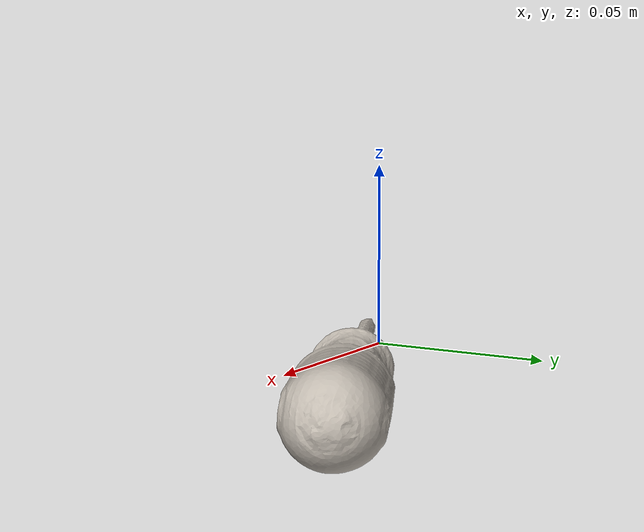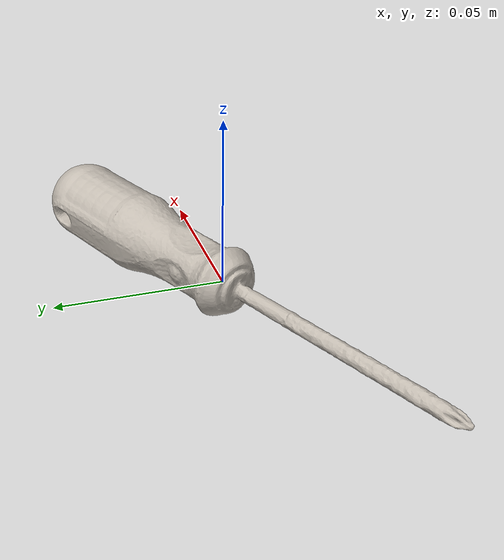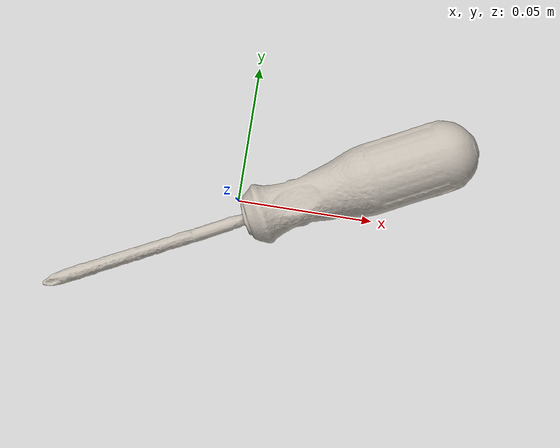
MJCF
<mujoco model="bread">
  <asset>
    <mesh file="nontextured.stl" name="obj_mesh" scale="0.8 0.8 0.8"/>
    <texture file="../../../../../textures/bread.png" type="2d" name="tex-bread" />
    <material name="bread" reflectance="0.7" texrepeat="15 15" texture="tex-bread" texuniform="true"/>
  </asset>
  <worldbody>
    <body>
      <body name="collision">
        <geom pos="0.042698 -0.003381499999999999 -0.0173985" mesh="obj_mesh" type="mesh" solimp="0.998 0.998 0.001" solref="0.001 1" density="50" friction="0.95 0.3 0.1"  material="bread" group="1" condim="4"/>
      </body>
      <body name="visual">
        <geom pos="0.042698 -0.003381499999999999 -0.0173985" mesh="obj_mesh" type="mesh" material="bread"  conaffinity="0" contype="0"  group="0" mass="0.0001"/>
        <geom pos="0.042698 -0.003381499999999999 -0.0173985" mesh="obj_mesh" type="mesh" material="bread"  conaffinity="0" contype="0"  group="1" mass="0.0001"/>
      </body>
      <site rgba="0 0 0 0" size="0.005" pos="0 0 -0.0177575" name="bottom_site"/>
      <site rgba="0 0 0 0" size="0.005" pos="0 0 0.0177575" name="top_site"/>
      <site rgba="0 0 0 0" size="0.005" pos="0.097429 0.0534835 0.0177575" name="horizontal_radius_site"/>
    </body>
  </worldbody>
</mujoco>
